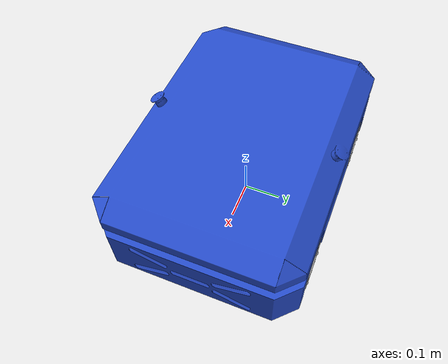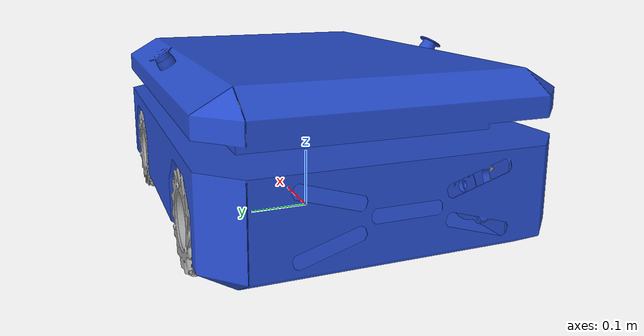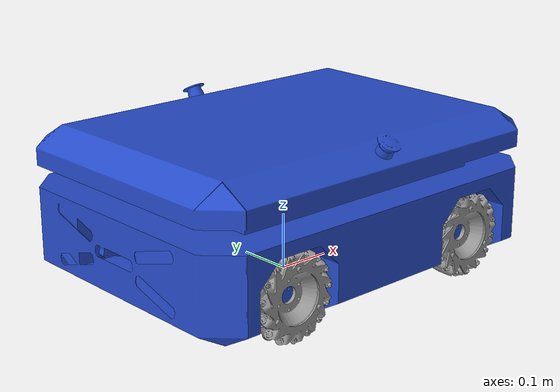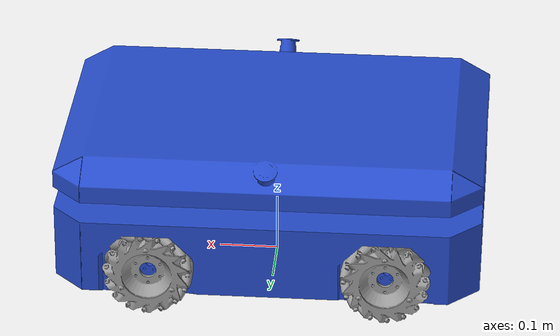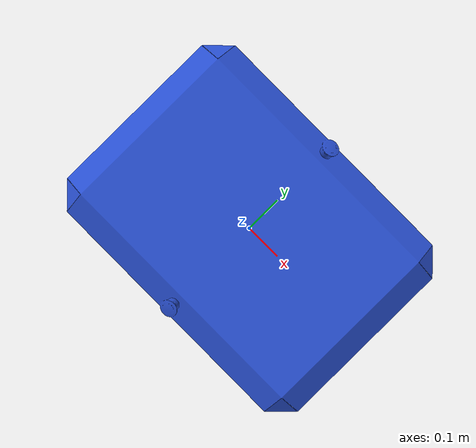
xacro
<?xml version="1.0"?>
<robot xmlns:xacro="http://ros.org/wiki/xacro" name="home_base">

  <xacro:property name="wheel_radius" value="0.08"/>
  <xacro:property name="wheel_width" value="0.07"/>
  <xacro:property name="body_size" value="0.5 0.5 0.2"/>
  <xacro:property name="mesh_dir" value="file://$(find home_custom_base_description)/meshes/collision"/>

  <link name="home_base_base_footprint"/>

  <link name="home_base_link">
    <visual>
      <origin xyz="0 0 0" rpy="3.14 0 0"/>
      <geometry>
        <mesh filename="${mesh_dir}/body.stl" scale="0.001 0.001 0.001"/>
      </geometry>
      <material name="Blue"/>
    </visual>
  </link>

  <joint name="home_base_base_link_joint" type="fixed">
    <parent link="home_base_base_footprint"/>
    <child link="home_base_link"/>
    <origin xyz="0.0 0.0 0.2" rpy="0.0 0.0 0.0"/>
  </joint>

  <!-- Repeat for each wheel -->
  <xacro:macro name="wheel_link" params="name xyz rpy mecanum_type">
    <link name="${name}">
      <visual>
        <origin xyz="0 0 0" rpy="0 0 0"/>
        <geometry>
          <mesh filename="${mesh_dir}/mecanum_${mecanum_type}.stl" scale="0.001 0.001 0.001"/>
        </geometry>
        <material name="Gray"/>
      </visual>
    </link>
    <joint name="${name}_joint" type="continuous">
      <parent link="home_base_link"/>
      <child link="${name}"/>
      <origin xyz="${xyz}" rpy="${rpy}"/>
      <axis xyz="0 0 1"/>
    </joint>
  </xacro:macro>

  <!-- Instantiate 4 wheels -->
  <xacro:wheel_link name="front_left_wheel" xyz="0.2 0.23 -0.12" rpy="-1.57 0 0" mecanum_type="right"/>
  <xacro:wheel_link name="rear_left_wheel" xyz="-0.2 0.23 -0.12" rpy="-1.57 0 0" mecanum_type="left"/>
  <xacro:wheel_link name="front_right_wheel" xyz="0.2 -0.23 -0.12" rpy="-1.57 0 0" mecanum_type="left"/>
  <xacro:wheel_link name="rear_right_wheel" xyz="-0.2 -0.23 -0.12" rpy="-1.57 0 0" mecanum_type="right"/>

</robot>
